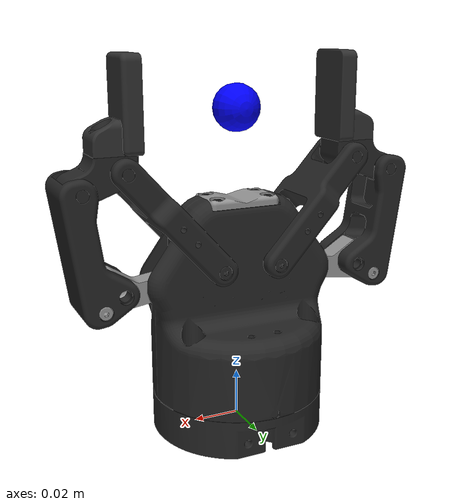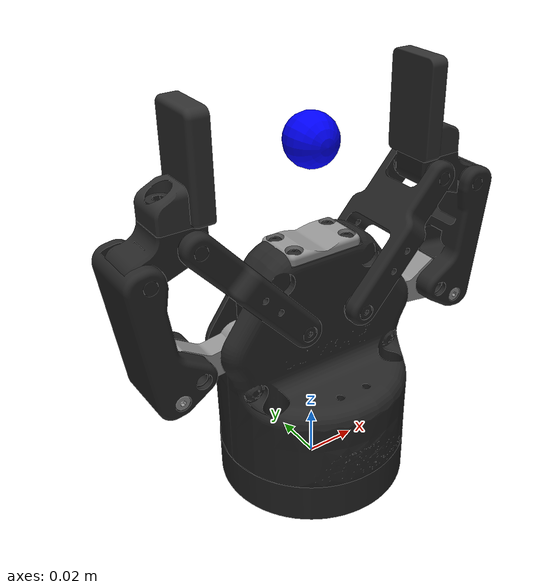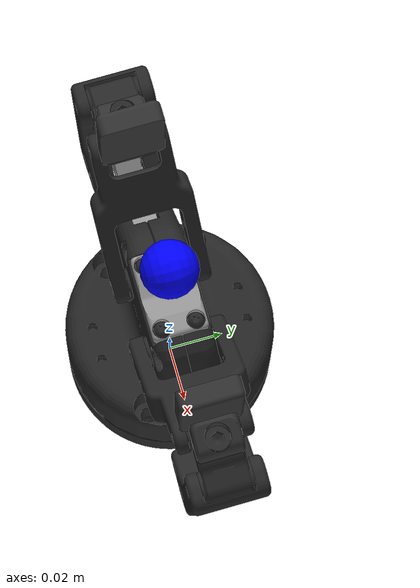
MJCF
<mujoco model="robotiq_2f85_v4">
  <compiler angle="radian"/>

  <asset>

    <material name="metal" rgba="0.58 0.58 0.58 1"/>
    <material name="silicone" rgba="0.1882 0.1882 0.1882 1"/>
    <material name="black" rgba="0.149 0.149 0.149 1"/>

    <mesh file="assets/gripper_models/robotiq_gripper/assets/base.stl"/>
    <mesh file="assets/gripper_models/robotiq_gripper/assets/base_coupling.stl"/>
    <mesh file="assets/gripper_models/robotiq_gripper/assets/c-a01-85-open.stl"/>
    <mesh file="assets/gripper_models/robotiq_gripper/assets/driver.stl"/>
    <mesh file="assets/gripper_models/robotiq_gripper/assets/coupler.stl"/>
    <mesh file="assets/gripper_models/robotiq_gripper/assets/spring_link.stl"/>
    <mesh file="assets/gripper_models/robotiq_gripper/assets/follower.stl"/>
    <mesh file="assets/gripper_models/robotiq_gripper/assets/tongue.stl"/>
  </asset>

  <default>
    <default class="2f85">
      <mesh scale="0.001 0.001 0.001"/>
      <general biastype="affine"/>

      <joint axis="0 0 1"/>
      <default class="driver">
        <joint range="0 0.9" armature="0.005" damping="0.1" solimplimit="0.95 0.99 0.001" solreflimit="0.005 1"/>
      </default>
      <default class="follower">
        <joint range="-0.872664 0.9" armature="0.001" solimplimit="0.95 0.99 0.001" solreflimit="0.005 1"/>
      </default>
      <default class="spring_link">
        <joint range="-0.29670597283 0.9" armature="0.001" stiffness="0.05" springref="2.62" damping="0.00125"/>
      </default>
      <default class="coupler">
        <joint range="-1.57 0" armature="0.001" solimplimit="0.95 0.99 0.001" solreflimit="0.005 1"/>
      </default>

      <default class="visual">
        <geom type="mesh" contype="0" conaffinity="0" group="2" material="black"/>
      </default>
      <default class="collision">
        <geom type="mesh" group="3"/>
        <default class="pad_box1">
          <geom mass="1e-6" type="box" pos="0.043258  0 0.12" size="0.002 0.011 0.009375" friction="0.7"
            solimp="0.95 0.99 0.001" solref="0.004 1" priority="1" rgba="0.55 0.55 0.55 1"/>
        </default>
        <default class="pad_box2">
          <geom mass="1e-6" type="box" pos="0.043258 0 0.13875" size="0.002 0.011 0.009375" friction="0.6"
            solimp="0.95 0.99 0.001" solref="0.004 1" priority="1" rgba="0.45 0.45 0.45 1"/>
        </default>
      </default>
    </default>
  </default>

  <worldbody>

    <body name="target_ee_pose" mocap="true" pos="0 0 0.0" quat="1 0 0 0">
      <site name="target_ee_pose" pos="0 0 0.0" size="0.01" rgba="0 1 0 1"/>
      <geom name="target_ee_pose" type="box" rgba="0 1 0 0.1" size="0.01 0.01 0.01" conaffinity="0" contype="0"
        mass="10.0"/>
    </body>

    <body gravcomp="1" name="base" childclass="2f85">
      <joint type="free" name="robotiq_free_joint" damping="1"/>

      <site name="tcp" pos="0 0 0.13675" size="0.01" rgba="0 0 1 1" euler="1.57 0 0"/>

      <camera name="follower" pos="0 -0.5 -0.5" euler="2.5 0 0" mode="fixed" fovy="53.1"/>

      <inertial mass="0.777441" pos="0 -2.70394e-05 0.0354675" quat="1 -0.00152849 0 0"
        diaginertia="0.000260285 0.000225381 0.000152708"/>
      <geom class="visual" pos="0 0 0.0108" quat="0 0 0 1" mesh="base"/>
      <geom class="visual" pos="0 0 0.004" quat="1 -1 0 0" mesh="base_coupling"/>
      <geom class="visual" pos="0 0 0.0108" quat="1 0 0 0" material="metal" mesh="c-a01-85-open"/>
      <geom class="collision" mesh="base"/>
      <camera name="egocentric" pos="0.031 0.074 0.022" euler="0.339710886 3.15302530717 0" fovy="56.74"
        resolution="1280 720"/>
      <site name="grasp_site" pos="0 0 0.155" xyaxes="0 -1 0 1 0 0" rgba="1 1 1 1" group="4"/>
      <!-- Left-hand side 4-bar linkage -->
      <body gravcomp="1" name="left_driver" pos="-0.0306011 0.00475 0.0657045" quat="1 -1 0 0">
        <inertial mass="0.00899563" pos="0 0.0177547 0.00107314" quat="0.681301 0.732003 0 0"
          diaginertia="1.72352e-06 1.60906e-06 3.22006e-07"/>
        <joint name="left_driver_joint" class="driver"/>
        <geom class="visual" pos="0.0306011 0.0549045 -0.0047" quat="1 1 0 0" material="metal" mesh="driver"/>
        <geom class="collision" pos="0.0306011 0.0549045 -0.0047" quat="1 1 0 0" mesh="driver"/>
        <body gravcomp="1" name="left_coupler" pos="-0.0314249 0.00453223 -0.0102" quat="0 0 0 1">
          <inertial mass="0.0140974" pos="0 0.00301209 0.0232175" quat="0.705636 -0.0455904 0.0455904 0.705636"
            diaginertia="4.16206e-06 3.52216e-06 8.88131e-07"/>
          <geom class="visual" pos="-0.062026 -0.0503723 0.0055" quat="1 -1 0 0" mesh="coupler"/>
          <geom class="collision" pos="-0.062026 -0.0503723 0.0055" quat="1 -1 0 0" mesh="coupler"/>
        </body>
      </body>
      <body gravcomp="1" name="left_spring_link" pos="-0.0127 -0.012 0.07222" quat="1 -1 0 0">
        <inertial mass="0.0221642" pos="-8.65005e-09 0.0181624 0.0212658" quat="0.663403 -0.244737 0.244737 0.663403"
          diaginertia="8.96853e-06 6.71733e-06 2.63931e-06"/>
        <joint name="left_spring_link_joint" class="spring_link"/>
        <geom class="visual" pos="0.0127 0.06142 0.01205" quat="1 1 0 0" type="mesh" mesh="spring_link"/>
        <geom class="collision" pos="0.0127 0.06142 0.01205" quat="1 1 0 0" type="mesh" mesh="spring_link"/>
        <body gravcomp="1" name="left_follower" pos="-0.0382079 -0.0425003 0.00295" quat="0 -1 -1.90231e-05 0">
          <inertial mass="0.0125222" pos="0 -0.011046 0.0124786" quat="1 0.1664 0 0"
            diaginertia="2.67415e-06 2.4559e-06 6.02031e-07"/>
          <joint name="left_follower" class="follower"/>
          <geom class="visual" pos="0.0509079 -0.10392 -0.0091" quat="1 -1 0 0" type="mesh" mesh="follower"/>
          <geom class="visual" pos="0.0509079 -0.10392 -0.0091" quat="1 -1 0 0" type="mesh" material="silicone"
            mesh="tongue"/>
          <geom class="collision" pos="0.0509079 -0.10392 -0.0091" quat="1 -1 0 0" type="mesh" mesh="follower"/>
          <geom class="collision" pos="0.0509079 -0.10392 -0.0091" quat="1 -1 0 0" type="mesh" mesh="tongue"/>
          <body gravcomp="1" name="left_pad" pos="-0.0377897 -0.103916 -0.0091" quat="1 -1 0 0">
            <geom class="pad_box1" name="left_pad1"/>
            <geom class="pad_box2" name="left_pad2"/>
          </body>
        </body>
      </body>
      <!-- Right-hand side 4-bar linkage -->
      <body gravcomp="1" name="right_driver" pos="0.0306011 -0.00475 0.0657045" quat="0 0 -1 1">
        <inertial mass="0.00899563" pos="2.96931e-12 0.0177547 0.00107314" quat="0.681301 0.732003 0 0"
          diaginertia="1.72352e-06 1.60906e-06 3.22006e-07"/>
        <joint name="right_driver_joint" class="driver"/>
        <geom class="visual" pos="0.0306011 0.0549045 -0.0047" quat="1 1 0 0" material="metal" mesh="driver"/>
        <geom class="collision" pos="0.0306011 0.0549045 -0.0047" quat="1 1 0 0" mesh="driver"/>
        <body gravcomp="1" name="right_coupler" pos="-0.0314249 0.00453223 -0.0102" quat="0 0 0 1">
          <inertial mass="0.0140974" pos="0 0.00301209 0.0232175" quat="0.705636 -0.0455904 0.0455904 0.705636"
            diaginertia="4.16206e-06 3.52216e-06 8.88131e-07"/>
          <geom class="visual" pos="-0.062026 -0.0503723 0.0055" quat="1 -1 0 0" mesh="coupler"/>
          <geom class="collision" pos="-0.062026 -0.0503723 0.0055" quat="1 -1 0 0" mesh="coupler"/>
        </body>
      </body>
      <body gravcomp="1" name="right_spring_link" pos="0.0127 0.012 0.07222" quat="0 0 -1 1">
        <inertial mass="0.0221642" pos="-8.65005e-09 0.0181624 0.0212658" quat="0.663403 -0.244737 0.244737 0.663403"
          diaginertia="8.96853e-06 6.71733e-06 2.63931e-06"/>
        <joint name="right_spring_link_joint" class="spring_link"/>
        <geom class="visual" pos="0.0127 0.06142 0.01205" quat="1 1 0 0" mesh="spring_link"/>
        <geom class="collision" pos="0.0127 0.06142 0.01205" quat="1 1 0 0" mesh="spring_link"/>
        <body gravcomp="1" name="right_follower" pos="-0.0382079 -0.0425003 0.00295" quat="0 -1 0 0">
          <inertial mass="0.0125222" pos="0 -0.011046 0.0124786" quat="1 0.1664 0 0"
            diaginertia="2.67415e-06 2.4559e-06 6.02031e-07"/>
          <joint name="right_follower_joint" class="follower"/>
          <geom class="visual" pos="0.0509079 -0.10392 -0.0091" quat="1 -1 0 0" material="silicone" mesh="tongue"/>
          <geom class="visual" pos="0.0509079 -0.10392 -0.0091" quat="1 -1 0 0" mesh="follower"/>
          <geom class="collision" pos="0.0509079 -0.10392 -0.0091" quat="1 -1 0 0" mesh="tongue"/>
          <geom class="collision" pos="0.0509079 -0.10392 -0.0091" quat="1 -1 0 0" mesh="follower"/>
          <body gravcomp="1" name="right_pad" pos="-0.0377897 -0.103916 -0.0091" quat="1 -1 0 0">
            <geom class="pad_box1" name="right_pad1"/>
            <geom class="pad_box2" name="right_pad2"/>
          </body>
        </body>
      </body>
    </body>
  </worldbody>

  <contact>
    <exclude body1="base" body2="left_driver"/>
    <exclude body1="base" body2="right_driver"/>
    <exclude body1="base" body2="left_spring_link"/>
    <exclude body1="base" body2="right_spring_link"/>
    <exclude body1="right_coupler" body2="right_follower"/>
    <exclude body1="left_coupler" body2="left_follower"/>
  </contact>

  <tendon>
    <fixed name="split">
      <joint joint="right_driver_joint" coef="0.485"/>
      <joint joint="left_driver_joint" coef="0.485"/>
    </fixed>
  </tendon>

  <equality>
    <connect anchor="-0.0179014 -0.00651468 0.0044" body1="right_follower" body2="right_coupler"
      solimp="0.95 0.99 0.001" solref="0.005 1"/>
    <connect anchor="-0.0179014 -0.00651468 0.0044" body1="left_follower" body2="left_coupler" solimp="0.95 0.99 0.001"
      solref="0.005 1"/>
    <joint joint1="right_driver_joint" joint2="left_driver_joint" polycoef="0 1 0 0 0" solimp="0.95 0.99 0.001"
      solref="0.005 1"/>
    <weld site1="target_ee_pose" site2="tcp" solref="0.001 1" solimp="0.99 0.99 0.001"/>
  </equality>

  <actuator>
    <general class="2f85" name="fingers_actuator" tendon="split" forcerange="-5 5" ctrlrange="0 255"
      gainprm="0.3137255 0 0" biasprm="0 -100 -10"/>
  </actuator>

</mujoco>
